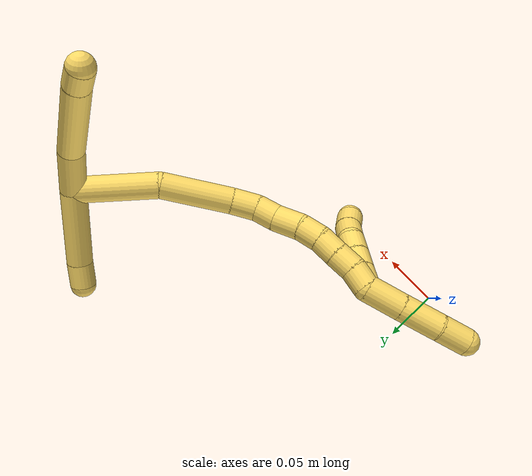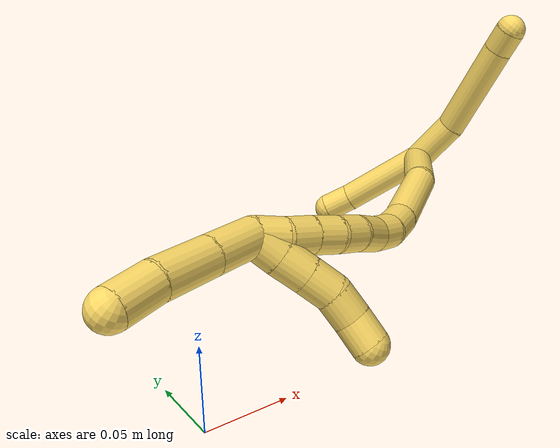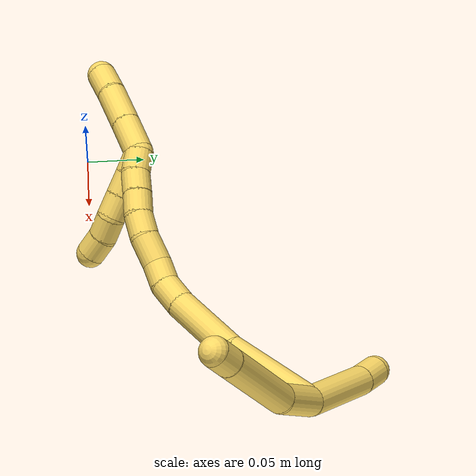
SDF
<sdf version="1.7">
 <world name="default">
  <model name="5">
   <static>0</static>
   <link name="5">
    <collision name="collision-cylinder-e_1_2_8">
     <pose>-0.000597 -0.002017 0.02289 0.087889 -0.025979 -0.001142</pose>
     <geometry><cylinder><radius>0.0125</radius><length>0.045973</length></cylinder></geometry>
     <surface>
      <friction><ode><mu>1.16</mu><mu2>1.16</mu2><slip1>0</slip1><slip2>0</slip2></ode></friction>
      <contact><ode><kp>1e+06</kp><kd>1</kd><max_vel>0</max_vel><min_depth>0.001</min_depth></ode></contact>
     </surface>
    </collision>
    <visual name="visual-cylinder-e_1_2_8">
     <pose>-0.000597 -0.002017 0.02289 0.087889 -0.025979 -0.001142</pose>
     <geometry><cylinder><radius>0.0125</radius><length>0.045973</length></cylinder></geometry>
     <material><ambient>1 0.858824 0.4 1</ambient></material>
    </visual>
    <collision name="collision-cylinder-e_2_8_9">
     <pose>-0.007959 0.002746 0.086318 -0.165712 -0.163136 0.013578</pose>
     <geometry><cylinder><radius>0.0125</radius><length>0.08331</length></cylinder></geometry>
     <surface>
      <friction><ode><mu>1.16</mu><mu2>1.16</mu2><slip1>0</slip1><slip2>0</slip2></ode></friction>
      <contact><ode><kp>1e+06</kp><kd>1</kd><max_vel>0</max_vel><min_depth>0.001</min_depth></ode></contact>
     </surface>
    </collision>
    <visual name="visual-cylinder-e_2_8_9">
     <pose>-0.007959 0.002746 0.086318 -0.165712 -0.163136 0.013578</pose>
     <geometry><cylinder><radius>0.0125</radius><length>0.08331</length></cylinder></geometry>
     <material><ambient>1 0.858824 0.4 1</ambient></material>
    </visual>
    <collision name="collision-cylinder-e_3_9_6">
     <pose>-0.017173 0.011182 0.136785 -0.165266 -0.238641 0.019858</pose>
     <geometry><cylinder><radius>0.0125</radius><length>0.020718</length></cylinder></geometry>
     <surface>
      <friction><ode><mu>1.16</mu><mu2>1.16</mu2><slip1>0</slip1><slip2>0</slip2></ode></friction>
      <contact><ode><kp>1e+06</kp><kd>1</kd><max_vel>0</max_vel><min_depth>0.001</min_depth></ode></contact>
     </surface>
    </collision>
    <visual name="visual-cylinder-e_3_9_6">
     <pose>-0.017173 0.011182 0.136785 -0.165266 -0.238641 0.019858</pose>
     <geometry><cylinder><radius>0.0125</radius><length>0.020718</length></cylinder></geometry>
     <material><ambient>1 0.858824 0.4 1</ambient></material>
    </visual>
    <collision name="collision-cylinder-e_1_2_10">
     <pose>-0.002276 0.013305 -0.035344 -2.78155 -0.060185 0.327832</pose>
     <geometry><cylinder><radius>0.0125</radius><length>0.075668</length></cylinder></geometry>
     <surface>
      <friction><ode><mu>1.16</mu><mu2>1.16</mu2><slip1>0</slip1><slip2>0</slip2></ode></friction>
      <contact><ode><kp>1e+06</kp><kd>1</kd><max_vel>0</max_vel><min_depth>0.001</min_depth></ode></contact>
     </surface>
    </collision>
    <visual name="visual-cylinder-e_1_2_10">
     <pose>-0.002276 0.013305 -0.035344 -2.78155 -0.060185 0.327832</pose>
     <geometry><cylinder><radius>0.0125</radius><length>0.075668</length></cylinder></geometry>
     <material><ambient>1 0.858824 0.4 1</ambient></material>
    </visual>
    <collision name="collision-cylinder-e_2_10_5">
     <pose>-0.00625 0.031909 -0.081507 -2.68623 -0.140102 0.588114</pose>
     <geometry><cylinder><radius>0.0125</radius><length>0.024332</length></cylinder></geometry>
     <surface>
      <friction><ode><mu>1.16</mu><mu2>1.16</mu2><slip1>0</slip1><slip2>0</slip2></ode></friction>
      <contact><ode><kp>1e+06</kp><kd>1</kd><max_vel>0</max_vel><min_depth>0.001</min_depth></ode></contact>
     </surface>
    </collision>
    <visual name="visual-cylinder-e_2_10_5">
     <pose>-0.00625 0.031909 -0.081507 -2.68623 -0.140102 0.588114</pose>
     <geometry><cylinder><radius>0.0125</radius><length>0.024332</length></cylinder></geometry>
     <material><ambient>1 0.858824 0.4 1</ambient></material>
    </visual>
    <collision name="collision-cylinder-e_1_2_11">
     <pose>-0.039625 -0.00106 0.005592 0.187321 -1.42813 -0.162455</pose>
     <geometry><cylinder><radius>0.0125</radius><length>0.080064</length></cylinder></geometry>
     <surface>
      <friction><ode><mu>1.16</mu><mu2>1.16</mu2><slip1>0</slip1><slip2>0</slip2></ode></friction>
      <contact><ode><kp>1e+06</kp><kd>1</kd><max_vel>0</max_vel><min_depth>0.001</min_depth></ode></contact>
     </surface>
    </collision>
    <visual name="visual-cylinder-e_1_2_11">
     <pose>-0.039625 -0.00106 0.005592 0.187321 -1.42813 -0.162455</pose>
     <geometry><cylinder><radius>0.0125</radius><length>0.080064</length></cylinder></geometry>
     <material><ambient>1 0.858824 0.4 1</ambient></material>
    </visual>
    <collision name="collision-cylinder-e_2_11_12">
     <pose>-0.112774 -0.000169 0.005773 -2.79557 -1.40085 2.73278</pose>
     <geometry><cylinder><radius>0.0125</radius><length>0.068026</length></cylinder></geometry>
     <surface>
      <friction><ode><mu>1.16</mu><mu2>1.16</mu2><slip1>0</slip1><slip2>0</slip2></ode></friction>
      <contact><ode><kp>1e+06</kp><kd>1</kd><max_vel>0</max_vel><min_depth>0.001</min_depth></ode></contact>
     </surface>
    </collision>
    <visual name="visual-cylinder-e_2_11_12">
     <pose>-0.112774 -0.000169 0.005773 -2.79557 -1.40085 2.73278</pose>
     <geometry><cylinder><radius>0.0125</radius><length>0.068026</length></cylinder></geometry>
     <material><ambient>1 0.858824 0.4 1</ambient></material>
    </visual>
    <collision name="collision-cylinder-e_3_12_13">
     <pose>-0.158308 0.00423 -0.000817 -2.01952 -1.34832 1.80877</pose>
     <geometry><cylinder><radius>0.0125</radius><length>0.024629</length></cylinder></geometry>
     <surface>
      <friction><ode><mu>1.16</mu><mu2>1.16</mu2><slip1>0</slip1><slip2>0</slip2></ode></friction>
      <contact><ode><kp>1e+06</kp><kd>1</kd><max_vel>0</max_vel><min_depth>0.001</min_depth></ode></contact>
     </surface>
    </collision>
    <visual name="visual-cylinder-e_3_12_13">
     <pose>-0.158308 0.00423 -0.000817 -2.01952 -1.34832 1.80877</pose>
     <geometry><cylinder><radius>0.0125</radius><length>0.024629</length></cylinder></geometry>
     <material><ambient>1 0.858824 0.4 1</ambient></material>
    </visual>
    <collision name="collision-cylinder-e_4_13_14">
     <pose>-0.179249 0.011762 -0.002779 -1.72364 -1.04823 1.18599</pose>
     <geometry><cylinder><radius>0.0125</radius><length>0.020609</length></cylinder></geometry>
     <surface>
      <friction><ode><mu>1.16</mu><mu2>1.16</mu2><slip1>0</slip1><slip2>0</slip2></ode></friction>
      <contact><ode><kp>1e+06</kp><kd>1</kd><max_vel>0</max_vel><min_depth>0.001</min_depth></ode></contact>
     </surface>
    </collision>
    <visual name="visual-cylinder-e_4_13_14">
     <pose>-0.179249 0.011762 -0.002779 -1.72364 -1.04823 1.18599</pose>
     <geometry><cylinder><radius>0.0125</radius><length>0.020609</length></cylinder></geometry>
     <material><ambient>1 0.858824 0.4 1</ambient></material>
    </visual>
    <collision name="collision-cylinder-e_5_14_15">
     <pose>-0.19933 0.023257 -0.001895 -1.31648 -1.03474 0.829117</pose>
     <geometry><cylinder><radius>0.0125</radius><length>0.025943</length></cylinder></geometry>
     <surface>
      <friction><ode><mu>1.16</mu><mu2>1.16</mu2><slip1>0</slip1><slip2>0</slip2></ode></friction>
      <contact><ode><kp>1e+06</kp><kd>1</kd><max_vel>0</max_vel><min_depth>0.001</min_depth></ode></contact>
     </surface>
    </collision>
    <visual name="visual-cylinder-e_5_14_15">
     <pose>-0.19933 0.023257 -0.001895 -1.31648 -1.03474 0.829117</pose>
     <geometry><cylinder><radius>0.0125</radius><length>0.025943</length></cylinder></geometry>
     <material><ambient>1 0.858824 0.4 1</ambient></material>
    </visual>
    <collision name="collision-cylinder-e_6_15_16">
     <pose>-0.218939 0.035585 -0.000856 -1.67658 -0.957775 1.04704</pose>
     <geometry><cylinder><radius>0.0125</radius><length>0.020679</length></cylinder></geometry>
     <surface>
      <friction><ode><mu>1.16</mu><mu2>1.16</mu2><slip1>0</slip1><slip2>0</slip2></ode></friction>
      <contact><ode><kp>1e+06</kp><kd>1</kd><max_vel>0</max_vel><min_depth>0.001</min_depth></ode></contact>
     </surface>
    </collision>
    <visual name="visual-cylinder-e_6_15_16">
     <pose>-0.218939 0.035585 -0.000856 -1.67658 -0.957775 1.04704</pose>
     <geometry><cylinder><radius>0.0125</radius><length>0.020679</length></cylinder></geometry>
     <material><ambient>1 0.858824 0.4 1</ambient></material>
    </visual>
    <collision name="collision-cylinder-e_7_16_17">
     <pose>-0.234437 0.048378 -0.003333 -1.83338 -0.779675 0.983886</pose>
     <geometry><cylinder><radius>0.0125</radius><length>0.02003</length></cylinder></geometry>
     <surface>
      <friction><ode><mu>1.16</mu><mu2>1.16</mu2><slip1>0</slip1><slip2>0</slip2></ode></friction>
      <contact><ode><kp>1e+06</kp><kd>1</kd><max_vel>0</max_vel><min_depth>0.001</min_depth></ode></contact>
     </surface>
    </collision>
    <visual name="visual-cylinder-e_7_16_17">
     <pose>-0.234437 0.048378 -0.003333 -1.83338 -0.779675 0.983886</pose>
     <geometry><cylinder><radius>0.0125</radius><length>0.02003</length></cylinder></geometry>
     <material><ambient>1 0.858824 0.4 1</ambient></material>
    </visual>
    <collision name="collision-cylinder-e_8_17_18">
     <pose>-0.248806 0.061773 -0.007161 -1.86566 -0.821937 1.06279</pose>
     <geometry><cylinder><radius>0.0125</radius><length>0.020007</length></cylinder></geometry>
     <surface>
      <friction><ode><mu>1.16</mu><mu2>1.16</mu2><slip1>0</slip1><slip2>0</slip2></ode></friction>
      <contact><ode><kp>1e+06</kp><kd>1</kd><max_vel>0</max_vel><min_depth>0.001</min_depth></ode></contact>
     </surface>
    </collision>
    <visual name="visual-cylinder-e_8_17_18">
     <pose>-0.248806 0.061773 -0.007161 -1.86566 -0.821937 1.06279</pose>
     <geometry><cylinder><radius>0.0125</radius><length>0.020007</length></cylinder></geometry>
     <material><ambient>1 0.858824 0.4 1</ambient></material>
    </visual>
    <collision name="collision-cylinder-e_9_18_1">
     <pose>-0.261746 0.076057 -0.012016 -1.92536 -0.595534 0.830454</pose>
     <geometry><cylinder><radius>0.0125</radius><length>0.020011</length></cylinder></geometry>
     <surface>
      <friction><ode><mu>1.16</mu><mu2>1.16</mu2><slip1>0</slip1><slip2>0</slip2></ode></friction>
      <contact><ode><kp>1e+06</kp><kd>1</kd><max_vel>0</max_vel><min_depth>0.001</min_depth></ode></contact>
     </surface>
    </collision>
    <visual name="visual-cylinder-e_9_18_1">
     <pose>-0.261746 0.076057 -0.012016 -1.92536 -0.595534 0.830454</pose>
     <geometry><cylinder><radius>0.0125</radius><length>0.020011</length></cylinder></geometry>
     <material><ambient>1 0.858824 0.4 1</ambient></material>
    </visual>
    <collision name="collision-cylinder-e_1_1_19">
     <pose>-0.266221 0.073921 -0.015681 1.65027 0.113973 0.123389</pose>
     <geometry><cylinder><radius>0.0125</radius><length>0.02</length></cylinder></geometry>
     <surface>
      <friction><ode><mu>1.16</mu><mu2>1.16</mu2><slip1>0</slip1><slip2>0</slip2></ode></friction>
      <contact><ode><kp>1e+06</kp><kd>1</kd><max_vel>0</max_vel><min_depth>0.001</min_depth></ode></contact>
     </surface>
    </collision>
    <visual name="visual-cylinder-e_1_1_19">
     <pose>-0.266221 0.073921 -0.015681 1.65027 0.113973 0.123389</pose>
     <geometry><cylinder><radius>0.0125</radius><length>0.02</length></cylinder></geometry>
     <material><ambient>1 0.858824 0.4 1</ambient></material>
    </visual>
    <collision name="collision-cylinder-e_2_19_20">
     <pose>-0.263784 0.054106 -0.016746 1.59868 0.130373 0.134048</pose>
     <geometry><cylinder><radius>0.0125</radius><length>0.02</length></cylinder></geometry>
     <surface>
      <friction><ode><mu>1.16</mu><mu2>1.16</mu2><slip1>0</slip1><slip2>0</slip2></ode></friction>
      <contact><ode><kp>1e+06</kp><kd>1</kd><max_vel>0</max_vel><min_depth>0.001</min_depth></ode></contact>
     </surface>
    </collision>
    <visual name="visual-cylinder-e_2_19_20">
     <pose>-0.263784 0.054106 -0.016746 1.59868 0.130373 0.134048</pose>
     <geometry><cylinder><radius>0.0125</radius><length>0.02</length></cylinder></geometry>
     <material><ambient>1 0.858824 0.4 1</ambient></material>
    </visual>
    <collision name="collision-cylinder-e_3_20_21">
     <pose>-0.261293 0.034276 -0.017476 1.61647 0.119315 0.124879</pose>
     <geometry><cylinder><radius>0.0125</radius><length>0.02</length></cylinder></geometry>
     <surface>
      <friction><ode><mu>1.16</mu><mu2>1.16</mu2><slip1>0</slip1><slip2>0</slip2></ode></friction>
      <contact><ode><kp>1e+06</kp><kd>1</kd><max_vel>0</max_vel><min_depth>0.001</min_depth></ode></contact>
     </surface>
    </collision>
    <visual name="visual-cylinder-e_3_20_21">
     <pose>-0.261293 0.034276 -0.017476 1.61647 0.119315 0.124879</pose>
     <geometry><cylinder><radius>0.0125</radius><length>0.02</length></cylinder></geometry>
     <material><ambient>1 0.858824 0.4 1</ambient></material>
    </visual>
    <collision name="collision-cylinder-e_4_21_22">
     <pose>-0.260437 0.014834 -0.02096 1.87896 -0.033434 -0.045725</pose>
     <geometry><cylinder><radius>0.0125</radius><length>0.02</length></cylinder></geometry>
     <surface>
      <friction><ode><mu>1.16</mu><mu2>1.16</mu2><slip1>0</slip1><slip2>0</slip2></ode></friction>
      <contact><ode><kp>1e+06</kp><kd>1</kd><max_vel>0</max_vel><min_depth>0.001</min_depth></ode></contact>
     </surface>
    </collision>
    <visual name="visual-cylinder-e_4_21_22">
     <pose>-0.260437 0.014834 -0.02096 1.87896 -0.033434 -0.045725</pose>
     <geometry><cylinder><radius>0.0125</radius><length>0.02</length></cylinder></geometry>
     <material><ambient>1 0.858824 0.4 1</ambient></material>
    </visual>
    <collision name="collision-cylinder-e_5_22_4">
     <pose>-0.263054 -0.00413 -0.026371 1.81765 -0.230242 -0.294621</pose>
     <geometry><cylinder><radius>0.0125</radius><length>0.02</length></cylinder></geometry>
     <surface>
      <friction><ode><mu>1.16</mu><mu2>1.16</mu2><slip1>0</slip1><slip2>0</slip2></ode></friction>
      <contact><ode><kp>1e+06</kp><kd>1</kd><max_vel>0</max_vel><min_depth>0.001</min_depth></ode></contact>
     </surface>
    </collision>
    <visual name="visual-cylinder-e_5_22_4">
     <pose>-0.263054 -0.00413 -0.026371 1.81765 -0.230242 -0.294621</pose>
     <geometry><cylinder><radius>0.0125</radius><length>0.02</length></cylinder></geometry>
     <material><ambient>1 0.858824 0.4 1</ambient></material>
    </visual>
    <collision name="collision-cylinder-e_1_1_23">
     <pose>-0.282971 0.090305 -0.018934 -2.12852 -1.11583 1.68811</pose>
     <geometry><cylinder><radius>0.0125</radius><length>0.034761</length></cylinder></geometry>
     <surface>
      <friction><ode><mu>1.16</mu><mu2>1.16</mu2><slip1>0</slip1><slip2>0</slip2></ode></friction>
      <contact><ode><kp>1e+06</kp><kd>1</kd><max_vel>0</max_vel><min_depth>0.001</min_depth></ode></contact>
     </surface>
    </collision>
    <visual name="visual-cylinder-e_1_1_23">
     <pose>-0.282971 0.090305 -0.018934 -2.12852 -1.11583 1.68811</pose>
     <geometry><cylinder><radius>0.0125</radius><length>0.034761</length></cylinder></geometry>
     <material><ambient>1 0.858824 0.4 1</ambient></material>
    </visual>
    <collision name="collision-cylinder-e_2_23_24">
     <pose>-0.315688 0.103759 -0.027166 -2.11185 -1.12684 1.68083</pose>
     <geometry><cylinder><radius>0.0125</radius><length>0.037883</length></cylinder></geometry>
     <surface>
      <friction><ode><mu>1.16</mu><mu2>1.16</mu2><slip1>0</slip1><slip2>0</slip2></ode></friction>
      <contact><ode><kp>1e+06</kp><kd>1</kd><max_vel>0</max_vel><min_depth>0.001</min_depth></ode></contact>
     </surface>
    </collision>
    <visual name="visual-cylinder-e_2_23_24">
     <pose>-0.315688 0.103759 -0.027166 -2.11185 -1.12684 1.68083</pose>
     <geometry><cylinder><radius>0.0125</radius><length>0.037883</length></cylinder></geometry>
     <material><ambient>1 0.858824 0.4 1</ambient></material>
    </visual>
    <collision name="collision-cylinder-e_3_24_3">
     <pose>-0.345187 0.11458 -0.035679 -2.41437 -1.13399 2.06425</pose>
     <geometry><cylinder><radius>0.0125</radius><length>0.027356</length></cylinder></geometry>
     <surface>
      <friction><ode><mu>1.16</mu><mu2>1.16</mu2><slip1>0</slip1><slip2>0</slip2></ode></friction>
      <contact><ode><kp>1e+06</kp><kd>1</kd><max_vel>0</max_vel><min_depth>0.001</min_depth></ode></contact>
     </surface>
    </collision>
    <visual name="visual-cylinder-e_3_24_3">
     <pose>-0.345187 0.11458 -0.035679 -2.41437 -1.13399 2.06425</pose>
     <geometry><cylinder><radius>0.0125</radius><length>0.027356</length></cylinder></geometry>
     <material><ambient>1 0.858824 0.4 1</ambient></material>
    </visual>
    <collision name="collision-sphere-3">
     <pose>-0.357581 0.118426 -0.040002 0 -0 0</pose>
     <geometry><sphere><radius>0.0125</radius></sphere></geometry>
     <surface>
      <friction><ode><mu>1.16</mu><mu2>1.16</mu2><slip1>0</slip1><slip2>0</slip2></ode></friction>
      <contact><ode><kp>1e+06</kp><kd>1</kd><max_vel>0</max_vel><min_depth>0.001</min_depth></ode></contact>
     </surface>
    </collision>
    <visual name="visual-sphere-3">
     <pose>-0.357581 0.118426 -0.040002 0 -0 0</pose>
     <geometry><sphere><radius>0.0125</radius></sphere></geometry>
     <material><ambient>1 0.858824 0.4 1</ambient></material>
    </visual>
    <collision name="collision-sphere-24">
     <pose>-0.332794 0.110733 -0.031357 0 -0 0</pose>
     <geometry><sphere><radius>0.0125</radius></sphere></geometry>
     <surface>
      <friction><ode><mu>1.16</mu><mu2>1.16</mu2><slip1>0</slip1><slip2>0</slip2></ode></friction>
      <contact><ode><kp>1e+06</kp><kd>1</kd><max_vel>0</max_vel><min_depth>0.001</min_depth></ode></contact>
     </surface>
    </collision>
    <visual name="visual-sphere-24">
     <pose>-0.332794 0.110733 -0.031357 0 -0 0</pose>
     <geometry><sphere><radius>0.0125</radius></sphere></geometry>
     <material><ambient>1 0.858824 0.4 1</ambient></material>
    </visual>
    <collision name="collision-sphere-23">
     <pose>-0.298583 0.096785 -0.022976 0 -0 0</pose>
     <geometry><sphere><radius>0.0125</radius></sphere></geometry>
     <surface>
      <friction><ode><mu>1.16</mu><mu2>1.16</mu2><slip1>0</slip1><slip2>0</slip2></ode></friction>
      <contact><ode><kp>1e+06</kp><kd>1</kd><max_vel>0</max_vel><min_depth>0.001</min_depth></ode></contact>
     </surface>
    </collision>
    <visual name="visual-sphere-23">
     <pose>-0.298583 0.096785 -0.022976 0 -0 0</pose>
     <geometry><sphere><radius>0.0125</radius></sphere></geometry>
     <material><ambient>1 0.858824 0.4 1</ambient></material>
    </visual>
    <collision name="collision-sphere-4">
     <pose>-0.265336 -0.013571 -0.02875 0 -0 0</pose>
     <geometry><sphere><radius>0.0125</radius></sphere></geometry>
     <surface>
      <friction><ode><mu>1.16</mu><mu2>1.16</mu2><slip1>0</slip1><slip2>0</slip2></ode></friction>
      <contact><ode><kp>1e+06</kp><kd>1</kd><max_vel>0</max_vel><min_depth>0.001</min_depth></ode></contact>
     </surface>
    </collision>
    <visual name="visual-sphere-4">
     <pose>-0.265336 -0.013571 -0.02875 0 -0 0</pose>
     <geometry><sphere><radius>0.0125</radius></sphere></geometry>
     <material><ambient>1 0.858824 0.4 1</ambient></material>
    </visual>
    <collision name="collision-sphere-22">
     <pose>-0.260772 0.005311 -0.023992 0 -0 0</pose>
     <geometry><sphere><radius>0.0125</radius></sphere></geometry>
     <surface>
      <friction><ode><mu>1.16</mu><mu2>1.16</mu2><slip1>0</slip1><slip2>0</slip2></ode></friction>
      <contact><ode><kp>1e+06</kp><kd>1</kd><max_vel>0</max_vel><min_depth>0.001</min_depth></ode></contact>
     </surface>
    </collision>
    <visual name="visual-sphere-22">
     <pose>-0.260772 0.005311 -0.023992 0 -0 0</pose>
     <geometry><sphere><radius>0.0125</radius></sphere></geometry>
     <material><ambient>1 0.858824 0.4 1</ambient></material>
    </visual>
    <collision name="collision-sphere-21">
     <pose>-0.260103 0.024358 -0.017929 0 -0 0</pose>
     <geometry><sphere><radius>0.0125</radius></sphere></geometry>
     <surface>
      <friction><ode><mu>1.16</mu><mu2>1.16</mu2><slip1>0</slip1><slip2>0</slip2></ode></friction>
      <contact><ode><kp>1e+06</kp><kd>1</kd><max_vel>0</max_vel><min_depth>0.001</min_depth></ode></contact>
     </surface>
    </collision>
    <visual name="visual-sphere-21">
     <pose>-0.260103 0.024358 -0.017929 0 -0 0</pose>
     <geometry><sphere><radius>0.0125</radius></sphere></geometry>
     <material><ambient>1 0.858824 0.4 1</ambient></material>
    </visual>
    <collision name="collision-sphere-20">
     <pose>-0.262484 0.044195 -0.017022 0 -0 0</pose>
     <geometry><sphere><radius>0.0125</radius></sphere></geometry>
     <surface>
      <friction><ode><mu>1.16</mu><mu2>1.16</mu2><slip1>0</slip1><slip2>0</slip2></ode></friction>
      <contact><ode><kp>1e+06</kp><kd>1</kd><max_vel>0</max_vel><min_depth>0.001</min_depth></ode></contact>
     </surface>
    </collision>
    <visual name="visual-sphere-20">
     <pose>-0.262484 0.044195 -0.017022 0 -0 0</pose>
     <geometry><sphere><radius>0.0125</radius></sphere></geometry>
     <material><ambient>1 0.858824 0.4 1</ambient></material>
    </visual>
    <collision name="collision-sphere-5">
     <pose>-0.007949 0.037207 -0.092327 0 -0 0</pose>
     <geometry><sphere><radius>0.0125</radius></sphere></geometry>
     <surface>
      <friction><ode><mu>1.16</mu><mu2>1.16</mu2><slip1>0</slip1><slip2>0</slip2></ode></friction>
      <contact><ode><kp>1e+06</kp><kd>1</kd><max_vel>0</max_vel><min_depth>0.001</min_depth></ode></contact>
     </surface>
    </collision>
    <visual name="visual-sphere-5">
     <pose>-0.007949 0.037207 -0.092327 0 -0 0</pose>
     <geometry><sphere><radius>0.0125</radius></sphere></geometry>
     <material><ambient>1 0.858824 0.4 1</ambient></material>
    </visual>
    <collision name="collision-sphere-10">
     <pose>-0.004551 0.026611 -0.070688 0 -0 0</pose>
     <geometry><sphere><radius>0.0125</radius></sphere></geometry>
     <surface>
      <friction><ode><mu>1.16</mu><mu2>1.16</mu2><slip1>0</slip1><slip2>0</slip2></ode></friction>
      <contact><ode><kp>1e+06</kp><kd>1</kd><max_vel>0</max_vel><min_depth>0.001</min_depth></ode></contact>
     </surface>
    </collision>
    <visual name="visual-sphere-10">
     <pose>-0.004551 0.026611 -0.070688 0 -0 0</pose>
     <geometry><sphere><radius>0.0125</radius></sphere></geometry>
     <material><ambient>1 0.858824 0.4 1</ambient></material>
    </visual>
    <collision name="collision-sphere-6">
     <pose>-0.019622 0.012838 0.146713 0 -0 0</pose>
     <geometry><sphere><radius>0.0125</radius></sphere></geometry>
     <surface>
      <friction><ode><mu>1.16</mu><mu2>1.16</mu2><slip1>0</slip1><slip2>0</slip2></ode></friction>
      <contact><ode><kp>1e+06</kp><kd>1</kd><max_vel>0</max_vel><min_depth>0.001</min_depth></ode></contact>
     </surface>
    </collision>
    <visual name="visual-sphere-6">
     <pose>-0.019622 0.012838 0.146713 0 -0 0</pose>
     <geometry><sphere><radius>0.0125</radius></sphere></geometry>
     <material><ambient>1 0.858824 0.4 1</ambient></material>
    </visual>
    <collision name="collision-sphere-9">
     <pose>-0.014725 0.009526 0.126857 0 -0 0</pose>
     <geometry><sphere><radius>0.0125</radius></sphere></geometry>
     <surface>
      <friction><ode><mu>1.16</mu><mu2>1.16</mu2><slip1>0</slip1><slip2>0</slip2></ode></friction>
      <contact><ode><kp>1e+06</kp><kd>1</kd><max_vel>0</max_vel><min_depth>0.001</min_depth></ode></contact>
     </surface>
    </collision>
    <visual name="visual-sphere-9">
     <pose>-0.014725 0.009526 0.126857 0 -0 0</pose>
     <geometry><sphere><radius>0.0125</radius></sphere></geometry>
     <material><ambient>1 0.858824 0.4 1</ambient></material>
    </visual>
    <collision name="collision-sphere-2">
     <geometry><sphere><radius>0.0125</radius></sphere></geometry>
     <surface>
      <friction><ode><mu>1.16</mu><mu2>1.16</mu2><slip1>0</slip1><slip2>0</slip2></ode></friction>
      <contact><ode><kp>1e+06</kp><kd>1</kd><max_vel>0</max_vel><min_depth>0.001</min_depth></ode></contact>
     </surface>
    </collision>
    <visual name="visual-sphere-2">
     <geometry><sphere><radius>0.0125</radius></sphere></geometry>
     <material><ambient>1 0.858824 0.4 1</ambient></material>
    </visual>
    <collision name="collision-sphere-19">
     <pose>-0.265084 0.064018 -0.016469 0 -0 0</pose>
     <geometry><sphere><radius>0.0125</radius></sphere></geometry>
     <surface>
      <friction><ode><mu>1.16</mu><mu2>1.16</mu2><slip1>0</slip1><slip2>0</slip2></ode></friction>
      <contact><ode><kp>1e+06</kp><kd>1</kd><max_vel>0</max_vel><min_depth>0.001</min_depth></ode></contact>
     </surface>
    </collision>
    <visual name="visual-sphere-19">
     <pose>-0.265084 0.064018 -0.016469 0 -0 0</pose>
     <geometry><sphere><radius>0.0125</radius></sphere></geometry>
     <material><ambient>1 0.858824 0.4 1</ambient></material>
    </visual>
    <collision name="collision-sphere-8">
     <pose>-0.001194 -0.004034 0.04578 0 -0 0</pose>
     <geometry><sphere><radius>0.0125</radius></sphere></geometry>
     <surface>
      <friction><ode><mu>1.16</mu><mu2>1.16</mu2><slip1>0</slip1><slip2>0</slip2></ode></friction>
      <contact><ode><kp>1e+06</kp><kd>1</kd><max_vel>0</max_vel><min_depth>0.001</min_depth></ode></contact>
     </surface>
    </collision>
    <visual name="visual-sphere-8">
     <pose>-0.001194 -0.004034 0.04578 0 -0 0</pose>
     <geometry><sphere><radius>0.0125</radius></sphere></geometry>
     <material><ambient>1 0.858824 0.4 1</ambient></material>
    </visual>
    <collision name="collision-sphere-11">
     <pose>-0.079251 -0.00212 0.011185 0 -0 0</pose>
     <geometry><sphere><radius>0.0125</radius></sphere></geometry>
     <surface>
      <friction><ode><mu>1.16</mu><mu2>1.16</mu2><slip1>0</slip1><slip2>0</slip2></ode></friction>
      <contact><ode><kp>1e+06</kp><kd>1</kd><max_vel>0</max_vel><min_depth>0.001</min_depth></ode></contact>
     </surface>
    </collision>
    <visual name="visual-sphere-11">
     <pose>-0.079251 -0.00212 0.011185 0 -0 0</pose>
     <geometry><sphere><radius>0.0125</radius></sphere></geometry>
     <material><ambient>1 0.858824 0.4 1</ambient></material>
    </visual>
    <collision name="collision-sphere-12">
     <pose>-0.146297 0.001782 0.000362 0 -0 0</pose>
     <geometry><sphere><radius>0.0125</radius></sphere></geometry>
     <surface>
      <friction><ode><mu>1.16</mu><mu2>1.16</mu2><slip1>0</slip1><slip2>0</slip2></ode></friction>
      <contact><ode><kp>1e+06</kp><kd>1</kd><max_vel>0</max_vel><min_depth>0.001</min_depth></ode></contact>
     </surface>
    </collision>
    <visual name="visual-sphere-12">
     <pose>-0.146297 0.001782 0.000362 0 -0 0</pose>
     <geometry><sphere><radius>0.0125</radius></sphere></geometry>
     <material><ambient>1 0.858824 0.4 1</ambient></material>
    </visual>
    <collision name="collision-sphere-13">
     <pose>-0.170319 0.006678 -0.001996 0 -0 0</pose>
     <geometry><sphere><radius>0.0125</radius></sphere></geometry>
     <surface>
      <friction><ode><mu>1.16</mu><mu2>1.16</mu2><slip1>0</slip1><slip2>0</slip2></ode></friction>
      <contact><ode><kp>1e+06</kp><kd>1</kd><max_vel>0</max_vel><min_depth>0.001</min_depth></ode></contact>
     </surface>
    </collision>
    <visual name="visual-sphere-13">
     <pose>-0.170319 0.006678 -0.001996 0 -0 0</pose>
     <geometry><sphere><radius>0.0125</radius></sphere></geometry>
     <material><ambient>1 0.858824 0.4 1</ambient></material>
    </visual>
    <collision name="collision-sphere-14">
     <pose>-0.188178 0.016845 -0.003562 0 -0 0</pose>
     <geometry><sphere><radius>0.0125</radius></sphere></geometry>
     <surface>
      <friction><ode><mu>1.16</mu><mu2>1.16</mu2><slip1>0</slip1><slip2>0</slip2></ode></friction>
      <contact><ode><kp>1e+06</kp><kd>1</kd><max_vel>0</max_vel><min_depth>0.001</min_depth></ode></contact>
     </surface>
    </collision>
    <visual name="visual-sphere-14">
     <pose>-0.188178 0.016845 -0.003562 0 -0 0</pose>
     <geometry><sphere><radius>0.0125</radius></sphere></geometry>
     <material><ambient>1 0.858824 0.4 1</ambient></material>
    </visual>
    <collision name="collision-sphere-15">
     <pose>-0.210482 0.029669 -0.000228 0 -0 0</pose>
     <geometry><sphere><radius>0.0125</radius></sphere></geometry>
     <surface>
      <friction><ode><mu>1.16</mu><mu2>1.16</mu2><slip1>0</slip1><slip2>0</slip2></ode></friction>
      <contact><ode><kp>1e+06</kp><kd>1</kd><max_vel>0</max_vel><min_depth>0.001</min_depth></ode></contact>
     </surface>
    </collision>
    <visual name="visual-sphere-15">
     <pose>-0.210482 0.029669 -0.000228 0 -0 0</pose>
     <geometry><sphere><radius>0.0125</radius></sphere></geometry>
     <material><ambient>1 0.858824 0.4 1</ambient></material>
    </visual>
    <collision name="collision-sphere-16">
     <pose>-0.227396 0.0415 -0.001484 0 -0 0</pose>
     <geometry><sphere><radius>0.0125</radius></sphere></geometry>
     <surface>
      <friction><ode><mu>1.16</mu><mu2>1.16</mu2><slip1>0</slip1><slip2>0</slip2></ode></friction>
      <contact><ode><kp>1e+06</kp><kd>1</kd><max_vel>0</max_vel><min_depth>0.001</min_depth></ode></contact>
     </surface>
    </collision>
    <visual name="visual-sphere-16">
     <pose>-0.227396 0.0415 -0.001484 0 -0 0</pose>
     <geometry><sphere><radius>0.0125</radius></sphere></geometry>
     <material><ambient>1 0.858824 0.4 1</ambient></material>
    </visual>
    <collision name="collision-sphere-17">
     <pose>-0.241478 0.055256 -0.005182 0 -0 0</pose>
     <geometry><sphere><radius>0.0125</radius></sphere></geometry>
     <surface>
      <friction><ode><mu>1.16</mu><mu2>1.16</mu2><slip1>0</slip1><slip2>0</slip2></ode></friction>
      <contact><ode><kp>1e+06</kp><kd>1</kd><max_vel>0</max_vel><min_depth>0.001</min_depth></ode></contact>
     </surface>
    </collision>
    <visual name="visual-sphere-17">
     <pose>-0.241478 0.055256 -0.005182 0 -0 0</pose>
     <geometry><sphere><radius>0.0125</radius></sphere></geometry>
     <material><ambient>1 0.858824 0.4 1</ambient></material>
    </visual>
    <collision name="collision-sphere-18">
     <pose>-0.256133 0.06829 -0.00914 0 -0 0</pose>
     <geometry><sphere><radius>0.0125</radius></sphere></geometry>
     <surface>
      <friction><ode><mu>1.16</mu><mu2>1.16</mu2><slip1>0</slip1><slip2>0</slip2></ode></friction>
      <contact><ode><kp>1e+06</kp><kd>1</kd><max_vel>0</max_vel><min_depth>0.001</min_depth></ode></contact>
     </surface>
    </collision>
    <visual name="visual-sphere-18">
     <pose>-0.256133 0.06829 -0.00914 0 -0 0</pose>
     <geometry><sphere><radius>0.0125</radius></sphere></geometry>
     <material><ambient>1 0.858824 0.4 1</ambient></material>
    </visual>
    <collision name="collision-sphere-1">
     <pose>-0.267358 0.083825 -0.014892 0 -0 0</pose>
     <geometry><sphere><radius>0.0125</radius></sphere></geometry>
     <surface>
      <friction><ode><mu>1.16</mu><mu2>1.16</mu2><slip1>0</slip1><slip2>0</slip2></ode></friction>
      <contact><ode><kp>1e+06</kp><kd>1</kd><max_vel>0</max_vel><min_depth>0.001</min_depth></ode></contact>
     </surface>
    </collision>
    <visual name="visual-sphere-1">
     <pose>-0.267358 0.083825 -0.014892 0 -0 0</pose>
     <geometry><sphere><radius>0.0125</radius></sphere></geometry>
     <material><ambient>1 0.858824 0.4 1</ambient></material>
    </visual>
    <inertial>
     <pose>-0.135937 0.028176 0.002743 0 -0 0</pose>
     <mass>0.75</mass>
     <inertia>
      <ixx>0.000109</ixx>
      <ixy>0</ixy>
      <ixz>0</ixz>
      <iyy>0.000151</iyy>
      <iyz>0</iyz>
      <izz>8.1e-05</izz>
     </inertia>
    </inertial>
   </link>
   <pose>0.308092 0.173986 0.062754 0.652051 -0.076158 0.747124</pose>
  </model>
 </world>
</sdf>
